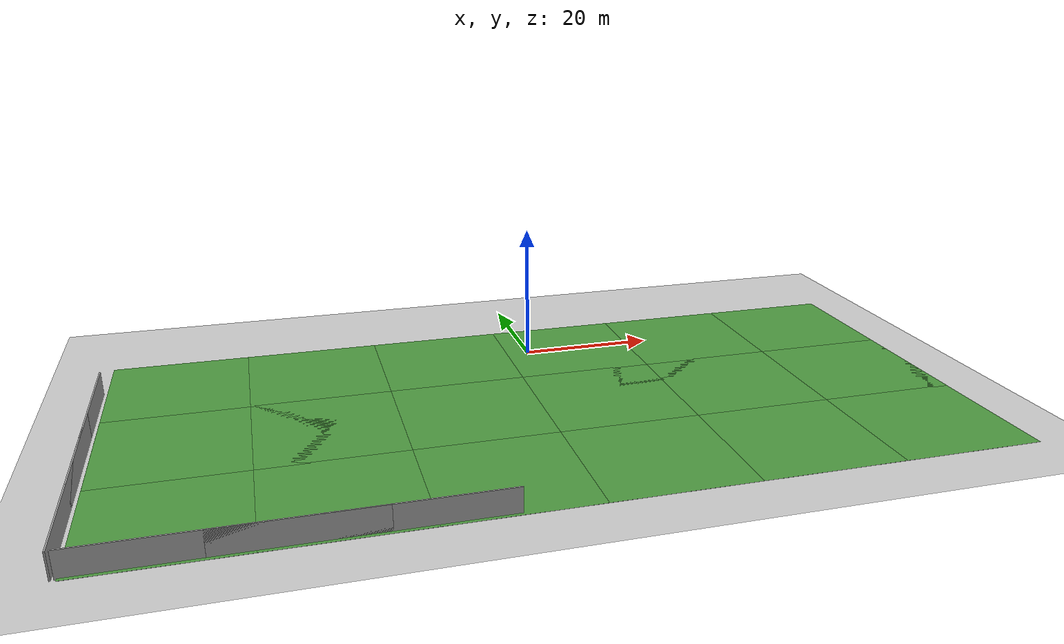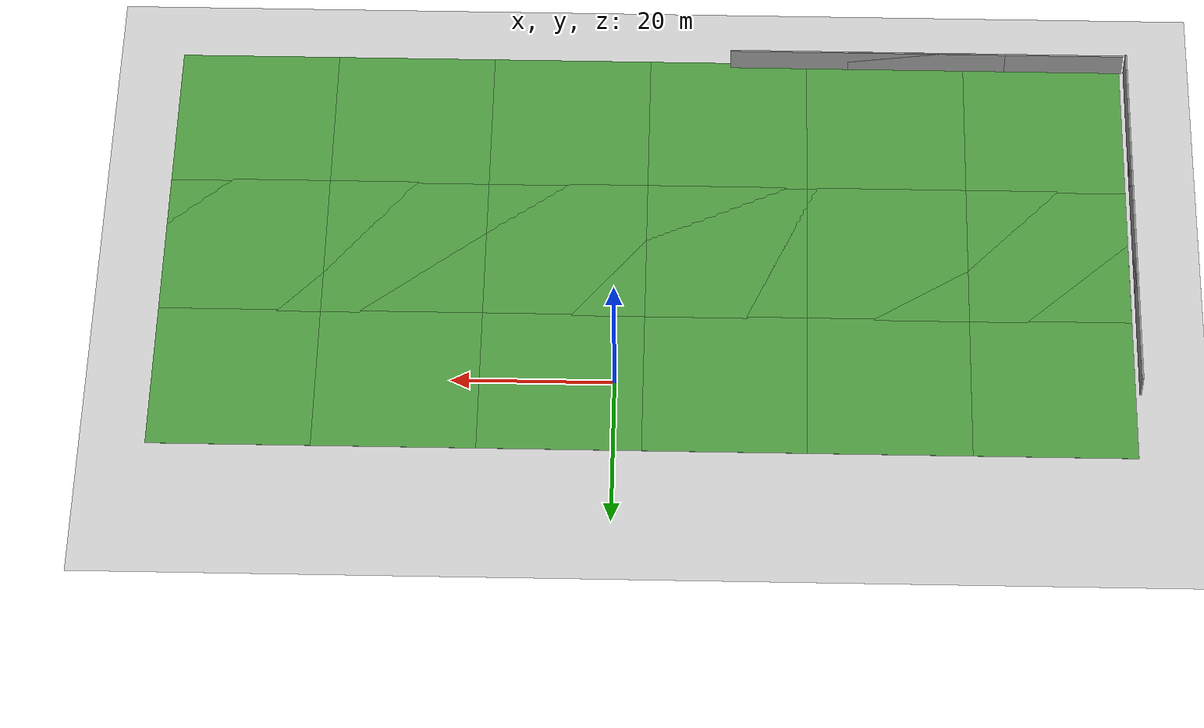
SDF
<sdf version="1.6">
 <world name="default">
  <model name="ground_plane">
   <static>1</static>
   <link name="link">
    <collision name="collision">
     <geometry><plane><normal>0 0 1</normal><size>100 100</size></plane></geometry>
     <surface><friction><ode><mu>100</mu><mu2>50</mu2></ode></friction></surface>
    </collision>
    <visual name="visual">
     <cast_shadows>0</cast_shadows>
     <geometry><plane><normal>0 0 1</normal><size>100 100</size></plane></geometry>
     <material>
      <script><uri>file://media/materials/scripts/gazebo.material</uri><name>Gazebo/Grey</name></script>
     </material>
    </visual>
    <velocity_decay><linear>0</linear><angular>0</angular></velocity_decay>
   </link>
  </model>
  <model name="wall_clone">
   <link name="link">
    <pose>0 0 1.4 0 -0 0</pose>
    <inertial>
     <mass>1</mass>
     <inertia><ixx>1</ixx><ixy>0</ixy><ixz>0</ixz><iyy>1</iyy><iyz>0</iyz><izz>1</izz></inertia>
    </inertial>
    <visual name="ModelPreview_1::link::visual_1">
     <cast_shadows>0</cast_shadows>
     <geometry><box><size>20 0.2 4</size></box></geometry>
     <material>
      <script>
       <uri>model://grey_wall/materials/scripts</uri>
       <uri>model://grey_wall/materials/textures</uri>
       <name>vrc/grey_wall</name>
      </script>
      <ambient>1 1 1 1</ambient>
      <diffuse>1 1 1 1</diffuse>
      <specular>0 0 0 1</specular>
      <emissive>0 0 0 1</emissive>
      <shader type="vertex"><normal_map>__default__</normal_map></shader>
     </material>
    </visual>
    <visual name="visual">
     <cast_shadows>0</cast_shadows>
     <geometry><box><size>50 0.2 4</size></box></geometry>
     <material>
      <script>
       <uri>model://grey_wall/materials/scripts</uri>
       <uri>model://grey_wall/materials/textures</uri>
       <name>vrc/grey_wall</name>
      </script>
      <ambient>1 1 1 1</ambient>
      <diffuse>1 1 1 1</diffuse>
      <specular>0 0 0 1</specular>
      <emissive>0 0 0 1</emissive>
      <shader type="vertex"><normal_map>__default__</normal_map></shader>
     </material>
    </visual>
    <collision name="collision">
     <geometry><box><size>50 0.2 4</size></box></geometry>
     <surface>
      <friction>
       <ode><mu>1</mu><mu2>1</mu2><fdir1>0 0 0</fdir1><slip1>0</slip1><slip2>0</slip2></ode>
       <torsional>
        <coefficient>1</coefficient>
        <patch_radius>0</patch_radius>
        <surface_radius>0</surface_radius>
        <use_patch_radius>1</use_patch_radius>
        <ode><slip>0</slip></ode>
       </torsional>
      </friction>
      <bounce><restitution_coefficient>0</restitution_coefficient><threshold>1e+06</threshold></bounce>
      <contact>
       <collide_without_contact>0</collide_without_contact>
       <collide_without_contact_bitmask>1</collide_without_contact_bitmask>
       <collide_bitmask>1</collide_bitmask>
       <ode>
        <soft_cfm>0</soft_cfm>
        <soft_erp>0.2</soft_erp>
        <kp>1e+13</kp>
        <kd>1</kd>
        <max_vel>0.01</max_vel>
        <min_depth>0</min_depth>
       </ode>
       <bullet>
        <split_impulse>1</split_impulse>
        <split_impulse_penetration_threshold>-0.01</split_impulse_penetration_threshold>
        <soft_cfm>0</soft_cfm>
        <soft_erp>0.2</soft_erp>
        <kp>1e+13</kp>
        <kd>1</kd>
       </bullet>
      </contact>
     </surface>
    </collision>
   </link>
   <static>1</static>
   <pose>-38.6602 -49.3294 0 0 -0 0</pose>
  </model>
  <model name="wall_clone_0_clone_clone_0">
   <link name="link">
    <pose>0 0 1.4 0 -0 0</pose>
    <inertial>
     <mass>1</mass>
     <inertia><ixx>1</ixx><ixy>0</ixy><ixz>0</ixz><iyy>1</iyy><iyz>0</iyz><izz>1</izz></inertia>
    </inertial>
    <visual name="ModelPreview_1::link::visual_1">
     <cast_shadows>0</cast_shadows>
     <geometry><box><size>20 0.2 4</size></box></geometry>
     <material>
      <script>
       <uri>model://grey_wall/materials/scripts</uri>
       <uri>model://grey_wall/materials/textures</uri>
       <name>vrc/grey_wall</name>
      </script>
      <ambient>1 1 1 1</ambient>
      <diffuse>1 1 1 1</diffuse>
      <specular>0 0 0 1</specular>
      <emissive>0 0 0 1</emissive>
      <shader type="vertex"><normal_map>__default__</normal_map></shader>
     </material>
    </visual>
    <visual name="visual">
     <cast_shadows>0</cast_shadows>
     <geometry><box><size>50 0.2 4</size></box></geometry>
     <material>
      <script>
       <uri>model://grey_wall/materials/scripts</uri>
       <uri>model://grey_wall/materials/textures</uri>
       <name>vrc/grey_wall</name>
      </script>
      <ambient>1 1 1 1</ambient>
      <diffuse>1 1 1 1</diffuse>
      <specular>0 0 0 1</specular>
      <emissive>0 0 0 1</emissive>
      <shader type="vertex"><normal_map>__default__</normal_map></shader>
     </material>
    </visual>
    <collision name="collision">
     <geometry><box><size>50 0.2 4</size></box></geometry>
     <surface>
      <friction>
       <ode><mu>1</mu><mu2>1</mu2><fdir1>0 0 0</fdir1><slip1>0</slip1><slip2>0</slip2></ode>
       <torsional>
        <coefficient>1</coefficient>
        <patch_radius>0</patch_radius>
        <surface_radius>0</surface_radius>
        <use_patch_radius>1</use_patch_radius>
        <ode><slip>0</slip></ode>
       </torsional>
      </friction>
      <bounce><restitution_coefficient>0</restitution_coefficient><threshold>1e+06</threshold></bounce>
      <contact>
       <collide_without_contact>0</collide_without_contact>
       <collide_without_contact_bitmask>1</collide_without_contact_bitmask>
       <collide_bitmask>1</collide_bitmask>
       <ode>
        <soft_cfm>0</soft_cfm>
        <soft_erp>0.2</soft_erp>
        <kp>1e+13</kp>
        <kd>1</kd>
        <max_vel>0.01</max_vel>
        <min_depth>0</min_depth>
       </ode>
       <bullet>
        <split_impulse>1</split_impulse>
        <split_impulse_penetration_threshold>-0.01</split_impulse_penetration_threshold>
        <soft_cfm>0</soft_cfm>
        <soft_erp>0.2</soft_erp>
        <kp>1e+13</kp>
        <kd>1</kd>
       </bullet>
      </contact>
     </surface>
    </collision>
   </link>
   <static>1</static>
   <pose>-64.0349 -24.5483 0 0 -0 1.57</pose>
  </model>
  <model name="grass_plane_3">
   <static>1</static>
   <link name="link">
    <collision name="collision">
     <geometry><plane><normal>0 0 1</normal><size>500 500</size></plane></geometry>
     <surface><friction><ode><mu>0.5</mu><mu2>0.5</mu2></ode></friction></surface>
    </collision>
    <visual name="visual_0">
     <pose>-40 -40 0 0 -0 0</pose>
     <cast_shadows>0</cast_shadows>
     <geometry><plane><normal>0 0 1</normal><size>20 20</size></plane></geometry>
     <material>
      <script>
       <uri>model://grass_plane/materials/scripts</uri>
       <uri>model://grass_plane/materials/textures</uri>
       <name>vrc/grass</name>
      </script>
     </material>
    </visual>
    <visual name="visual_1">
     <pose>-20 -40 0 0 -0 0</pose>
     <cast_shadows>0</cast_shadows>
     <geometry><plane><normal>0 0 1</normal><size>20 20</size></plane></geometry>
     <material>
      <script>
       <uri>model://grass_plane/materials/scripts</uri>
       <uri>model://grass_plane/materials/textures</uri>
       <name>vrc/grass</name>
      </script>
     </material>
    </visual>
    <visual name="visual_2">
     <pose>0 -40 0 0 -0 0</pose>
     <cast_shadows>0</cast_shadows>
     <geometry><plane><normal>0 0 1</normal><size>20 20</size></plane></geometry>
     <material>
      <script>
       <uri>model://grass_plane/materials/scripts</uri>
       <uri>model://grass_plane/materials/textures</uri>
       <name>vrc/grass</name>
      </script>
     </material>
    </visual>
    <visual name="visual_3">
     <pose>20 -40 0 0 -0 0</pose>
     <cast_shadows>0</cast_shadows>
     <geometry><plane><normal>0 0 1</normal><size>20 20</size></plane></geometry>
     <material>
      <script>
       <uri>model://grass_plane/materials/scripts</uri>
       <uri>model://grass_plane/materials/textures</uri>
       <name>vrc/grass</name>
      </script>
     </material>
    </visual>
    <visual name="visual_4">
     <pose>40 -40 0 0 -0 0</pose>
     <cast_shadows>0</cast_shadows>
     <geometry><plane><normal>0 0 1</normal><size>20 20</size></plane></geometry>
     <material>
      <script>
       <uri>model://grass_plane/materials/scripts</uri>
       <uri>model://grass_plane/materials/textures</uri>
       <name>vrc/grass</name>
      </script>
     </material>
    </visual>
    <visual name="visual_5">
     <pose>60 -40 0 0 -0 0</pose>
     <cast_shadows>0</cast_shadows>
     <geometry><plane><normal>0 0 1</normal><size>20 20</size></plane></geometry>
     <material>
      <script>
       <uri>model://grass_plane/materials/scripts</uri>
       <uri>model://grass_plane/materials/textures</uri>
       <name>vrc/grass</name>
      </script>
     </material>
    </visual>
    <visual name="visual_6">
     <pose>-40 -20 0 0 -0 0</pose>
     <cast_shadows>0</cast_shadows>
     <geometry><plane><normal>0 0 1</normal><size>20 20</size></plane></geometry>
     <material>
      <script>
       <uri>model://grass_plane/materials/scripts</uri>
       <uri>model://grass_plane/materials/textures</uri>
       <name>vrc/grass</name>
      </script>
     </material>
    </visual>
    <visual name="visual_7">
     <pose>-20 -20 0 0 -0 0</pose>
     <cast_shadows>0</cast_shadows>
     <geometry><plane><normal>0 0 1</normal><size>20 20</size></plane></geometry>
     <material>
      <script>
       <uri>model://grass_plane/materials/scripts</uri>
       <uri>model://grass_plane/materials/textures</uri>
       <name>vrc/grass</name>
      </script>
     </material>
    </visual>
    <visual name="visual_8">
     <pose>0 -20 0 0 -0 0</pose>
     <cast_shadows>0</cast_shadows>
     <geometry><plane><normal>0 0 1</normal><size>20 20</size></plane></geometry>
     <material>
      <script>
       <uri>model://grass_plane/materials/scripts</uri>
       <uri>model://grass_plane/materials/textures</uri>
       <name>vrc/grass</name>
      </script>
     </material>
    </visual>
    <visual name="visual_9">
     <pose>20 -20 0 0 -0 0</pose>
     <cast_shadows>0</cast_shadows>
     <geometry><plane><normal>0 0 1</normal><size>20 20</size></plane></geometry>
     <material>
      <script>
       <uri>model://grass_plane/materials/scripts</uri>
       <uri>model://grass_plane/materials/textures</uri>
       <name>vrc/grass</name>
      </script>
     </material>
    </visual>
    <visual name="visual_10">
     <pose>40 -20 0 0 -0 0</pose>
     <cast_shadows>0</cast_shadows>
     <geometry><plane><normal>0 0 1</normal><size>20 20</size></plane></geometry>
     <material>
      <script>
       <uri>model://grass_plane/materials/scripts</uri>
       <uri>model://grass_plane/materials/textures</uri>
       <name>vrc/grass</name>
      </script>
     </material>
    </visual>
    <visual name="visual_11">
     <pose>60 -20 0 0 -0 0</pose>
     <cast_shadows>0</cast_shadows>
     <geometry><plane><normal>0 0 1</normal><size>20 20</size></plane></geometry>
     <material>
      <script>
       <uri>model://grass_plane/materials/scripts</uri>
       <uri>model://grass_plane/materials/textures</uri>
       <name>vrc/grass</name>
      </script>
     </material>
    </visual>
   </link>
   <pose>-13.4077 19.8554 0.02 0 -0 0</pose>
  </model>
  <model name="grass_plane_4">
   <static>1</static>
   <link name="link">
    <collision name="collision">
     <geometry><plane><normal>0 0 1</normal><size>500 500</size></plane></geometry>
     <surface><friction><ode><mu>0.5</mu><mu2>0.5</mu2></ode></friction></surface>
    </collision>
    <visual name="visual_0">
     <pose>-40 -40 0 0 -0 0</pose>
     <cast_shadows>0</cast_shadows>
     <geometry><plane><normal>0 0 1</normal><size>20 20</size></plane></geometry>
     <material>
      <script>
       <uri>model://grass_plane/materials/scripts</uri>
       <uri>model://grass_plane/materials/textures</uri>
       <name>vrc/grass</name>
      </script>
     </material>
    </visual>
    <visual name="visual_1">
     <pose>-20 -40 0 0 -0 0</pose>
     <cast_shadows>0</cast_shadows>
     <geometry><plane><normal>0 0 1</normal><size>20 20</size></plane></geometry>
     <material>
      <script>
       <uri>model://grass_plane/materials/scripts</uri>
       <uri>model://grass_plane/materials/textures</uri>
       <name>vrc/grass</name>
      </script>
     </material>
    </visual>
    <visual name="visual_2">
     <pose>0 -40 0 0 -0 0</pose>
     <cast_shadows>0</cast_shadows>
     <geometry><plane><normal>0 0 1</normal><size>20 20</size></plane></geometry>
     <material>
      <script>
       <uri>model://grass_plane/materials/scripts</uri>
       <uri>model://grass_plane/materials/textures</uri>
       <name>vrc/grass</name>
      </script>
     </material>
    </visual>
    <visual name="visual_3">
     <pose>20 -40 0 0 -0 0</pose>
     <cast_shadows>0</cast_shadows>
     <geometry><plane><normal>0 0 1</normal><size>20 20</size></plane></geometry>
     <material>
      <script>
       <uri>model://grass_plane/materials/scripts</uri>
       <uri>model://grass_plane/materials/textures</uri>
       <name>vrc/grass</name>
      </script>
     </material>
    </visual>
    <visual name="visual_4">
     <pose>40 -40 0 0 -0 0</pose>
     <cast_shadows>0</cast_shadows>
     <geometry><plane><normal>0 0 1</normal><size>20 20</size></plane></geometry>
     <material>
      <script>
       <uri>model://grass_plane/materials/scripts</uri>
       <uri>model://grass_plane/materials/textures</uri>
       <name>vrc/grass</name>
      </script>
     </material>
    </visual>
    <visual name="visual_5">
     <pose>60 -40 0 0 -0 0</pose>
     <cast_shadows>0</cast_shadows>
     <geometry><plane><normal>0 0 1</normal><size>20 20</size></plane></geometry>
     <material>
      <script>
       <uri>model://grass_plane/materials/scripts</uri>
       <uri>model://grass_plane/materials/textures</uri>
       <name>vrc/grass</name>
      </script>
     </material>
    </visual>
    <visual name="visual_6">
     <pose>-40 -20 0 0 -0 0</pose>
     <cast_shadows>0</cast_shadows>
     <geometry><plane><normal>0 0 1</normal><size>20 20</size></plane></geometry>
     <material>
      <script>
       <uri>model://grass_plane/materials/scripts</uri>
       <uri>model://grass_plane/materials/textures</uri>
       <name>vrc/grass</name>
      </script>
     </material>
    </visual>
    <visual name="visual_7">
     <pose>-20 -20 0 0 -0 0</pose>
     <cast_shadows>0</cast_shadows>
     <geometry><plane><normal>0 0 1</normal><size>20 20</size></plane></geometry>
     <material>
      <script>
       <uri>model://grass_plane/materials/scripts</uri>
       <uri>model://grass_plane/materials/textures</uri>
       <name>vrc/grass</name>
      </script>
     </material>
    </visual>
    <visual name="visual_8">
     <pose>0 -20 0 0 -0 0</pose>
     <cast_shadows>0</cast_shadows>
     <geometry><plane><normal>0 0 1</normal><size>20 20</size></plane></geometry>
     <material>
      <script>
       <uri>model://grass_plane/materials/scripts</uri>
       <uri>model://grass_plane/materials/textures</uri>
       <name>vrc/grass</name>
      </script>
     </material>
    </visual>
    <visual name="visual_9">
     <pose>20 -20 0 0 -0 0</pose>
     <cast_shadows>0</cast_shadows>
     <geometry><plane><normal>0 0 1</normal><size>20 20</size></plane></geometry>
     <material>
      <script>
       <uri>model://grass_plane/materials/scripts</uri>
       <uri>model://grass_plane/materials/textures</uri>
       <name>vrc/grass</name>
      </script>
     </material>
    </visual>
    <visual name="visual_10">
     <pose>40 -20 0 0 -0 0</pose>
     <cast_shadows>0</cast_shadows>
     <geometry><plane><normal>0 0 1</normal><size>20 20</size></plane></geometry>
     <material>
      <script>
       <uri>model://grass_plane/materials/scripts</uri>
       <uri>model://grass_plane/materials/textures</uri>
       <name>vrc/grass</name>
      </script>
     </material>
    </visual>
    <visual name="visual_11">
     <pose>60 -20 0 0 -0 0</pose>
     <cast_shadows>0</cast_shadows>
     <geometry><plane><normal>0 0 1</normal><size>20 20</size></plane></geometry>
     <material>
      <script>
       <uri>model://grass_plane/materials/scripts</uri>
       <uri>model://grass_plane/materials/textures</uri>
       <name>vrc/grass</name>
      </script>
     </material>
    </visual>
   </link>
   <pose>-13.418 0.066427 0.02 0 -0 0</pose>
  </model>
 </world>
</sdf>
